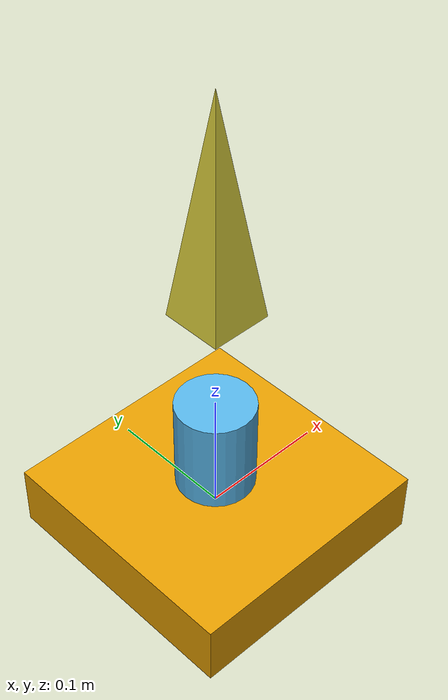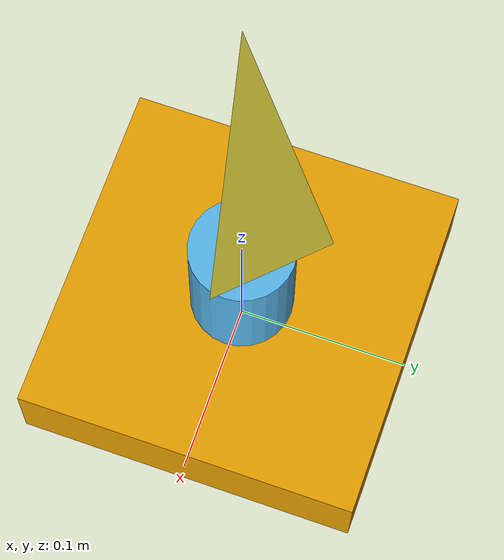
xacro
<?xml version="1.0"?>
<robot name="robot_a" xmlns:xacro="http://ros.org/wiki/xacro">
  <xacro:arg name="side" default="left"/>
  <xacro:include filename="$(find robot_b)/urdf/arm.xacro"/>
  <link name="base_link">
    <visual>
      <geometry>
        <box size="0.2 0.2 0.05"/>
      </geometry>
    </visual>
  </link>
  <joint name="lift_joint" type="prismatic">
    <parent link="base_link"/>
    <child link="lift_link"/>
    <origin xyz="0 0 0.05"/>
    <axis xyz="0 0 1"/>
    <limit lower="0" upper="0.2" effort="10" velocity="1"/>
  </joint>
  <link name="lift_link">
    <visual>
      <geometry>
        <cylinder radius="0.03" length="0.1"/>
      </geometry>
    </visual>
  </link>
  <joint name="mount_joint" type="fixed">
    <parent link="lift_link"/>
    <child link="mount_link"/>
  </joint>
  <link name="mount_link"/>
  <xacro:arm prefix="$(arg side)" parent="mount_link"/>
</robot>

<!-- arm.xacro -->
<robot xmlns:xacro="http://ros.org/wiki/xacro">
  <xacro:macro name="arm" params="prefix parent">
    <xacro:property name="arm_link_name" value="${prefix}_arm"/>
    <joint name="${arm_link_name}_joint" type="revolute">
      <parent link="${parent}"/>
      <child link="${arm_link_name}"/>
      <origin xyz="0 0 0.1"/>
      <axis xyz="0 1 0"/>
      <limit lower="-1" upper="1" effort="10" velocity="1"/>
    </joint>
    <link name="${arm_link_name}">
      <visual>
        <geometry>
          <mesh filename="package://robot_b/meshes/arm.stl"/>
        </geometry>
      </visual>
    </link>
  </xacro:macro>
</robot>
